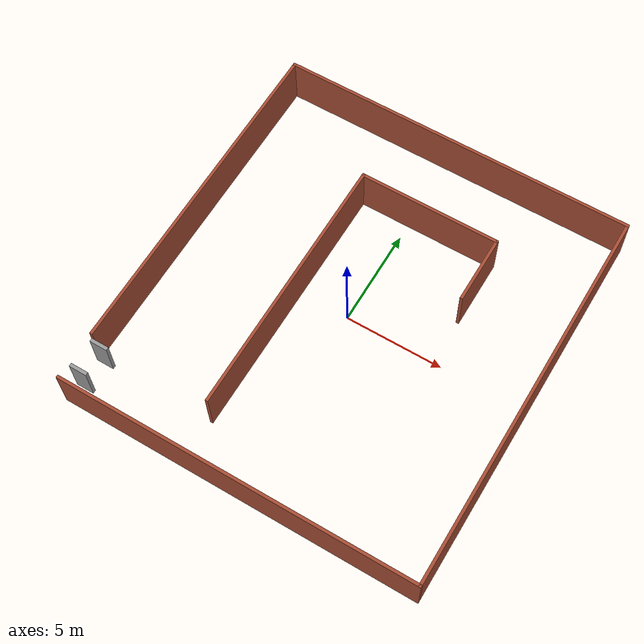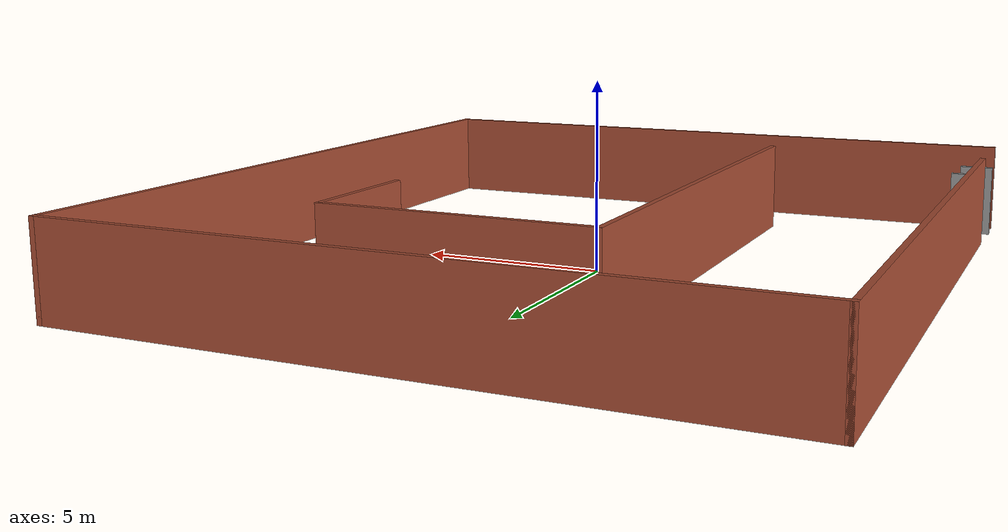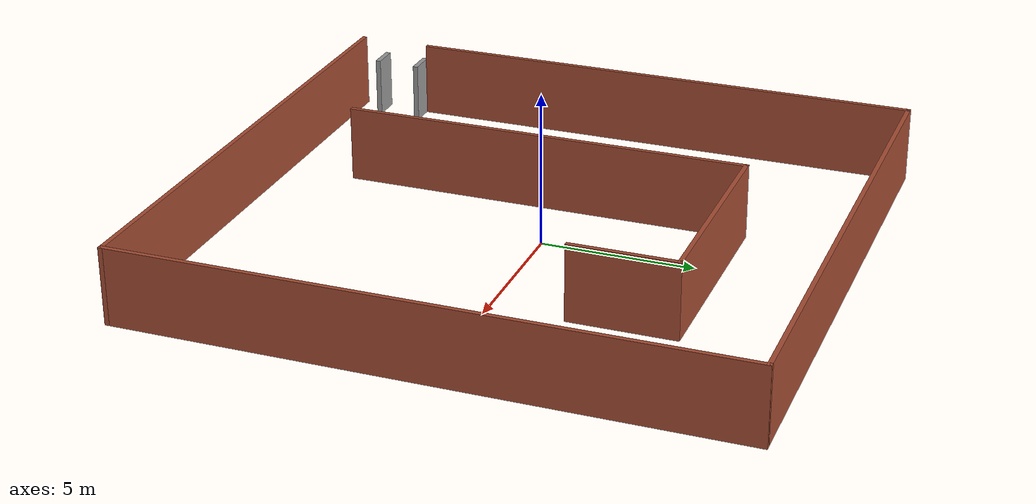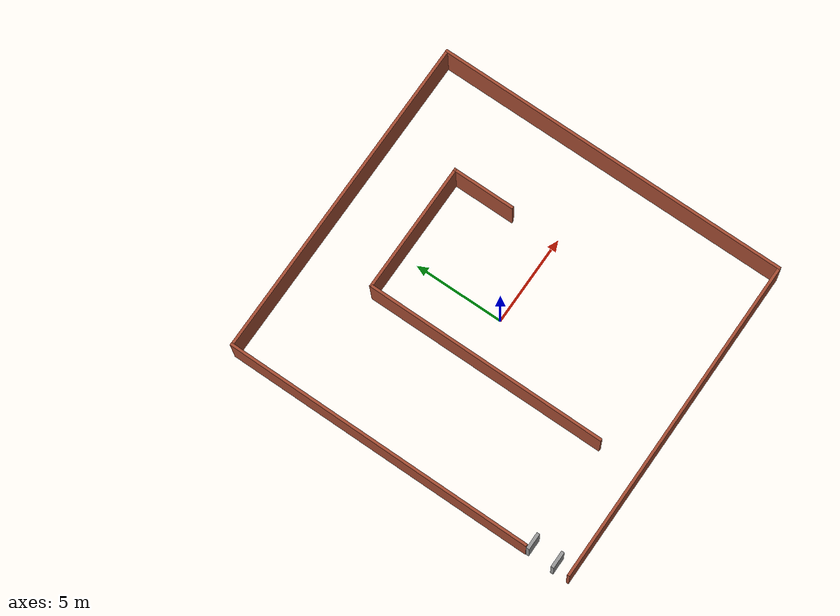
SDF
<?xml version='1.0'?>
<sdf version='1.7'>
  <model name='world1'>
    <pose>0.298565 -0.151261 0 0 -0 0</pose>
    <link name='Door_2'>
      <collision name='Door_2_Collision'>
        <geometry>
          <box>
            <size>0.9 0.17 2</size>
          </box>
        </geometry>
        <pose>0 0 1 0 -0 0</pose>
      </collision>
      <visual name='Door_2_Visual'>
        <pose>0 0 1 0 -0 0</pose>
        <geometry>
          <box>
            <size>0.9 0.17 2</size>
          </box>
        </geometry>
        <material>
          <script>
            <uri>file://media/materials/scripts/gazebo.material</uri>
            <name>Gazebo/Grey</name>
          </script>
        </material>
      </visual>
      <pose>-8.64315 -7.46274 0 0 -0 0</pose>
    </link>
    <link name='Door_3'>
      <collision name='Door_3_Collision'>
        <geometry>
          <box>
            <size>0.9 0.17 2</size>
          </box>
        </geometry>
        <pose>0 0 1 0 -0 0</pose>
      </collision>
      <visual name='Door_3_Visual'>
        <pose>0 0 1 0 -0 0</pose>
        <geometry>
          <box>
            <size>0.9 0.17 2</size>
          </box>
        </geometry>
        <material>
          <script>
            <uri>file://media/materials/scripts/gazebo.material</uri>
            <name>Gazebo/Grey</name>
          </script>
        </material>
      </visual>
      <pose>-8.71347 -8.92026 0 0 -0 0</pose>
    </link>
    <link name='Wall_13'>
      <collision name='Wall_13_Collision'>
        <geometry>
          <box>
            <size>17.25 0.15 2.5</size>
          </box>
        </geometry>
        <pose>0 0 1.25 0 -0 0</pose>
      </collision>
      <visual name='Wall_13_Visual'>
        <pose>0 0 1.25 0 -0 0</pose>
        <geometry>
          <box>
            <size>17.25 0.15 2.5</size>
          </box>
        </geometry>
        <material>
          <script>
            <uri>file://media/materials/scripts/gazebo.material</uri>
            <name>Gazebo/Bricks</name>
          </script>
          <ambient>0.435294 0.796078 0.67451 1</ambient>
        </material>
        <meta>
          <layer>0</layer>
        </meta>
      </visual>
      <pose>-9.05 1.25 0 0 -0 1.5708</pose>
    </link>
    <link name='Wall_14'>
      <collision name='Wall_14_Collision'>
        <geometry>
          <box>
            <size>18.25 0.15 2.5</size>
          </box>
        </geometry>
        <pose>0 0 1.25 0 -0 0</pose>
      </collision>
      <visual name='Wall_14_Visual'>
        <pose>0 0 1.25 0 -0 0</pose>
        <geometry>
          <box>
            <size>18.25 0.15 2.5</size>
          </box>
        </geometry>
        <material>
          <script>
            <uri>file://media/materials/scripts/gazebo.material</uri>
            <name>Gazebo/Bricks</name>
          </script>
          <ambient>0.435294 0.796078 0.67451 1</ambient>
        </material>
        <meta>
          <layer>0</layer>
        </meta>
      </visual>
      <pose>-0 9.8 0 0 -0 0</pose>
    </link>
    <link name='Wall_15'>
      <collision name='Wall_15_Collision'>
        <geometry>
          <box>
            <size>19.75 0.15 2.5</size>
          </box>
        </geometry>
        <pose>0 0 1.25 0 -0 0</pose>
      </collision>
      <visual name='Wall_15_Visual'>
        <pose>0 0 1.25 0 -0 0</pose>
        <geometry>
          <box>
            <size>19.75 0.15 2.5</size>
          </box>
        </geometry>
        <material>
          <script>
            <uri>file://media/materials/scripts/gazebo.material</uri>
            <name>Gazebo/Bricks</name>
          </script>
          <ambient>0.435294 0.796078 0.67451 1</ambient>
        </material>
        <meta>
          <layer>0</layer>
        </meta>
      </visual>
      <pose>9.05 -0 0 0 -0 -1.5708</pose>
    </link>
    <link name='Wall_16'>
      <collision name='Wall_16_Collision'>
        <geometry>
          <box>
            <size>18.25 0.15 2.5</size>
          </box>
        </geometry>
        <pose>0 0 1.25 0 -0 0</pose>
      </collision>
      <visual name='Wall_16_Visual'>
        <pose>0 0 1.25 0 -0 0</pose>
        <geometry>
          <box>
            <size>18.25 0.15 2.5</size>
          </box>
        </geometry>
        <material>
          <script>
            <uri>file://media/materials/scripts/gazebo.material</uri>
            <name>Gazebo/Bricks</name>
          </script>
          <ambient>0.435294 0.796078 0.67451 1</ambient>
        </material>
        <meta>
          <layer>0</layer>
        </meta>
      </visual>
      <pose>-0 -9.8 0 0 -0 3.14159</pose>
    </link>
    <link name='Wall_18'>
      <collision name='Wall_18_Collision'>
        <geometry>
          <box>
            <size>13.5 0.15 2.5</size>
          </box>
        </geometry>
        <pose>0 0 1.25 0 -0 0</pose>
      </collision>
      <visual name='Wall_18_Visual'>
        <pose>0 0 1.25 0 -0 0</pose>
        <geometry>
          <box>
            <size>13.5 0.15 2.5</size>
          </box>
        </geometry>
        <material>
          <script>
            <uri>file://media/materials/scripts/gazebo.material</uri>
            <name>Gazebo/Bricks</name>
          </script>
          <ambient>0.435294 0.796078 0.67451 1</ambient>
        </material>
        <meta>
          <layer>0</layer>
        </meta>
      </visual>
      <pose>-2.86583 -0.706371 0 0 -0 1.5708</pose>
    </link>
    <link name='Wall_19'>
      <collision name='Wall_19_Collision'>
        <geometry>
          <box>
            <size>7.25 0.15 2.5</size>
          </box>
        </geometry>
        <pose>0 0 1.25 0 -0 0</pose>
      </collision>
      <visual name='Wall_19_Visual'>
        <pose>0 0 1.25 0 -0 0</pose>
        <geometry>
          <box>
            <size>7.25 0.15 2.5</size>
          </box>
        </geometry>
        <material>
          <script>
            <uri>file://media/materials/scripts/gazebo.material</uri>
            <name>Gazebo/Bricks</name>
          </script>
          <ambient>1 1 1 1</ambient>
        </material>
        <meta>
          <layer>0</layer>
        </meta>
      </visual>
      <pose>0.684167 5.96863 0 0 -0 0</pose>
    </link>
    <link name='Wall_20'>
      <collision name='Wall_20_Collision'>
        <geometry>
          <box>
            <size>3.5 0.15 2.5</size>
          </box>
        </geometry>
        <pose>0 0 1.25 0 -0 0</pose>
      </collision>
      <visual name='Wall_20_Visual'>
        <pose>0 0 1.25 0 -0 0</pose>
        <geometry>
          <box>
            <size>3.5 0.15 2.5</size>
          </box>
        </geometry>
        <material>
          <script>
            <uri>file://media/materials/scripts/gazebo.material</uri>
            <name>Gazebo/Bricks</name>
          </script>
          <ambient>0.435294 0.796078 0.67451 1</ambient>
        </material>
        <meta>
          <layer>0</layer>
        </meta>
      </visual>
      <pose>4.23417 4.29363 0 0 -0 -1.5708</pose>
    </link>
    <static>1</static>
  </model>
</sdf>
